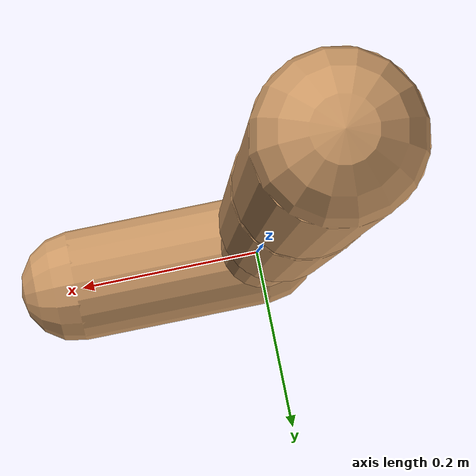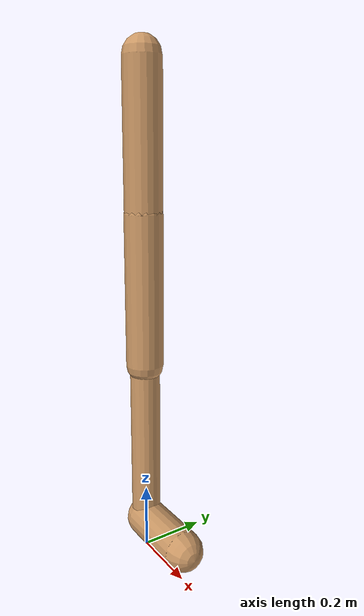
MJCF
<mujoco model="walker2d">
  <compiler angle="degree" coordinate="global" inertiafromgeom="true" />
  <default>
    <joint armature="0.01" damping=".1" limited="true" />
    <geom conaffinity="0" condim="3" contype="1" density="1000" friction="0.8 .1 .1" rgba="0.8 0.6 .4 1" />
  </default>
  <option integrator="RK4" timestep="0.002" />
  <worldbody>

    <body name="torso" pos="0 0 -0.027121037235807326">
      <joint armature="0" axis="1 0 0" damping="0" limited="false" name="ignorex" pos="0 0 0" stiffness="0" type="slide" />
      <joint armature="0" axis="0 0 1" damping="0" limited="false" name="ignorez" pos="0 0 0" ref="1.25" stiffness="0" type="slide" />
      <joint armature="0" axis="0 1 0" damping="0" limited="false" name="ignorey" pos="0 0 0" stiffness="0" type="hinge" />
      <geom fromto="0 0 1.45 0 0 1.05" name="torso_geom" size="0.05381863728388911" type="capsule" />
      <body name="thigh">
        <joint axis="0 -1 0" name="thigh_joint" pos="0 0 1.05" range="-150 0" type="hinge" />
        <geom fromto="0.0 0.0 1.05 0.0 0.0 0.6128468071116981" name="thigh_geom" size="0.054991399084177085" type="capsule" />
        <body name="leg" pos="0.0 0.0 0.012846807111698166">
          <joint axis="0 -1 0" name="leg_joint" pos="0 0 0.6" range="-150 0" type="hinge" />
          <geom fromto="0.0 0.0 0.6 0.0 0.0 0.11427423012410912" name="leg_geom" size="0.04399311926734167" type="capsule" />
          <body name="foot" pos="0.0 0.0 0.01427423012410911">
            <joint axis="0 -1 0" name="foot_joint" pos="0 0 0.1" range="-45 45" type="hinge" />
            <geom fromto="-0.0 0.0 0.1 0.204019888213344 0.0 0.1" name="foot_geom" size="0.05985757965114652" type="capsule" />
          </body>
        </body>
      </body>

      <body name="thigh_left">
        <joint axis="0 -1 0" name="thigh_left_joint" pos="0 0 1.05" range="-150 0" type="hinge" />
        <geom fromto="0.0 0.0 1.05 0.0 0.0 0.6128468071116981" name="thigh_left_geom" rgba=".7 .3 .6 1" size="0.054991399084177085" type="capsule" />
        <body name="leg_left" pos="0.0 0.0 0.012846807111698166">
          <joint axis="0 -1 0" name="leg_left_joint" pos="0 0 0.6" range="-150 0" type="hinge" />
          <geom fromto="0.0 0.0 0.6 0.0 0.0 0.11427423012410912" name="leg_left_geom" rgba=".7 .3 .6 1" size="0.04399311926734167" type="capsule" />
          <body name="foot_left" pos="0.0 0.0 0.01427423012410911">
            <joint axis="0 -1 0" name="foot_left_joint" pos="0 0 0.1" range="-45 45" type="hinge" />
            <geom fromto="-0.0 0.0 0.1 0.204019888213344 0.0 0.1" name="foot_left_geom" rgba=".7 .3 .6 1" size="0.05985757965114652" type="capsule" />
          </body>
        </body>
      </body>
    </body>
  </worldbody>
  <actuator>

    <motor ctrllimited="true" ctrlrange="-1.0 1.0" gear="100" joint="thigh_joint" />
    <motor ctrllimited="true" ctrlrange="-1.0 1.0" gear="100" joint="leg_joint" />
    <motor ctrllimited="true" ctrlrange="-1.0 1.0" gear="100" joint="foot_joint" />
    <motor ctrllimited="true" ctrlrange="-1.0 1.0" gear="100" joint="thigh_left_joint" />
    <motor ctrllimited="true" ctrlrange="-1.0 1.0" gear="100" joint="leg_left_joint" />
    <motor ctrllimited="true" ctrlrange="-1.0 1.0" gear="100" joint="foot_left_joint" />

  </actuator>
</mujoco>
